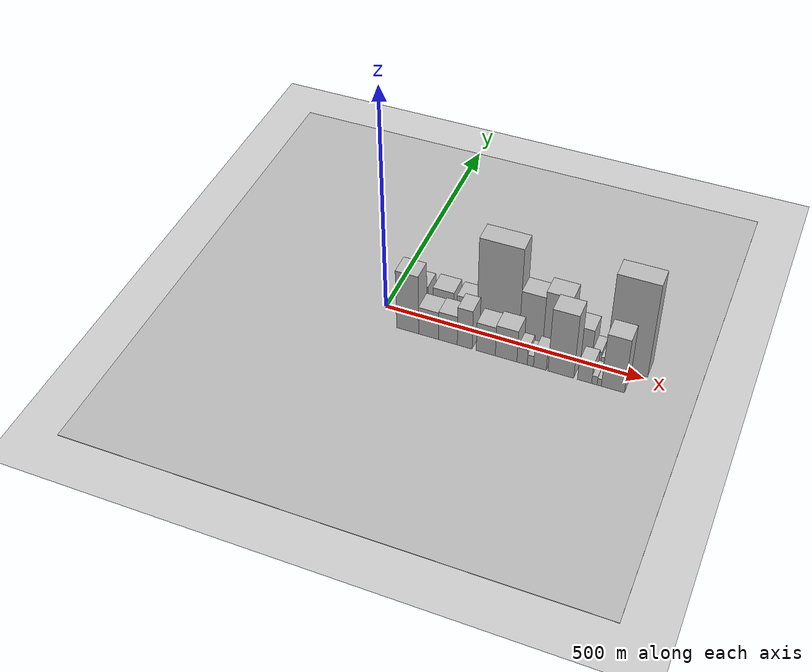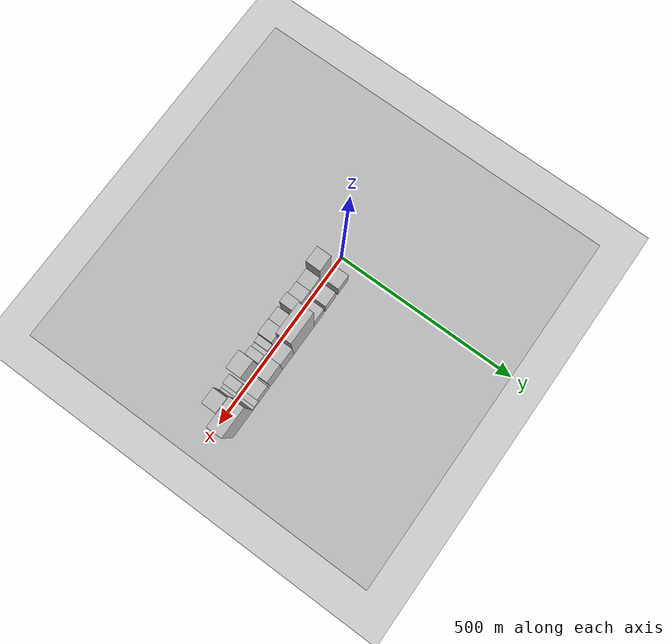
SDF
<?xml version="1.0" encoding="utf-8"?>

<sdf version="1.6">

   <world name="default">

      <gui fullscreen="0">

         <camera name="user_camera">

            <pose>-15 0 4.57585 0 0 0</pose>

            <view_controller>orbit</view_controller>

         </camera>

      </gui>

      <scene>

         <sky>

           <clouds>

             <speed>12</speed>

           </clouds>

         </sky>

         <ambient>0.4 0.4 0.4 1</ambient>

         <background>0.7 0.7 0.7 1</background>

         <shadows>1</shadows>

      </scene>

      <gravity>0 0 -9.8066</gravity>

      <magnetic_field>6e-06 2.3e-05 -4.2e-05</magnetic_field>

      <physics default="0" name="default_physics" type="ode">

         <ode>

            <solver>

               <type>quick</type>

               <iters>10</iters>

               <sor>1.0</sor>

               <use_dynamic_moi_rescaling>0</use_dynamic_moi_rescaling>

            </solver>

            <constraints>

               <cfm>0</cfm>

               <erp>0.2</erp>

               <contact_max_correcting_vel>100</contact_max_correcting_vel>

               <contact_surface_layer>0.001</contact_surface_layer>

            </constraints>

         </ode>

         <max_step_size>0.004</max_step_size>

         <real_time_factor>1</real_time_factor>

         <real_time_update_rate>250</real_time_update_rate>

      </physics>

      <light name="sun" type="directional">

         <cast_shadows>1</cast_shadows>

         <pose>0 0 10 0 0 0</pose>

         <diffuse>0.8 0.8 0.8 1</diffuse>

         <specular>0.2 0.2 0.2 1</specular>

         <attenuation>

            <range>1000</range>

            <constant>0.9</constant>

            <linear>0.01</linear>

            <quadratic>0.001</quadratic>

         </attenuation>

         <direction>-0.5 0.1 -0.9</direction>

      </light>

      <include>

         <name>ground_plane_1</name>

         <uri>model://HANNAS_ground_plane</uri>

         <pose>0 0 0  0 0 0</pose>

      </include>

      <include>

         <name>ground_plane_2</name>

         <uri>model://HANNAS_ground_plane</uri>

         <pose>100 0 0  0 0 0</pose>

      </include>

      <model name="building_1">

         <static>1</static>

         <pose frame="">60.7511 26.0000 0 0.000000 0.000000 1.570796</pose>

         <link name="link">

            <pose frame="">0 0 36.00 0 0 0</pose>

            <collision name="collision">

               <geometry>

                  <box>

                     <size>40.0000 41.5022 72.0000</size>

                  </box>

               </geometry>

               <max_contacts>10</max_contacts>

               <surface>

                  <contact>

                     <ode/>

                  </contact>

                  <bounce/>

                  <friction>

                     <torsional>

                        <ode/>

                     </torsional>

                     <ode/>

                  </friction>

               </surface>

            </collision>

            <visual name="visual">

               <cast_shadows>0</cast_shadows>

               <geometry>

                  <box>

                     <size>40.0000 41.5022 72.0000</size>

                  </box>

               </geometry>

               <material>

                  <script>

                     <uri>model://HANNAS_wall/materials/scripts</uri>

                     <uri>model://HANNAS_wall/materials/textures</uri>

                     <name>vrc/HANNAS_wall</name>

                  </script>

               </material>

            </visual>

            <self_collide>0</self_collide>

            <enable_wind>0</enable_wind>

            <kinematic>0</kinematic>

         </link>

      </model>

      <model name="building_2">

         <static>1</static>

         <pose frame="">112.4224 26.0000 0 0.000000 0.000000 1.570796</pose>

         <link name="link">

            <pose frame="">0 0 37.50 0 0 0</pose>

            <collision name="collision">

               <geometry>

                  <box>

                     <size>40.0000 41.8404 75.0000</size>

                  </box>

               </geometry>

               <max_contacts>10</max_contacts>

               <surface>

                  <contact>

                     <ode/>

                  </contact>

                  <bounce/>

                  <friction>

                     <torsional>

                        <ode/>

                     </torsional>

                     <ode/>

                  </friction>

               </surface>

            </collision>

            <visual name="visual">

               <cast_shadows>0</cast_shadows>

               <geometry>

                  <box>

                     <size>40.0000 41.8404 75.0000</size>

                  </box>

               </geometry>

               <material>

                  <script>

                     <uri>model://HANNAS_wall/materials/scripts</uri>

                     <uri>model://HANNAS_wall/materials/textures</uri>

                     <name>vrc/HANNAS_wall</name>

                  </script>

               </material>

            </visual>

            <self_collide>0</self_collide>

            <enable_wind>0</enable_wind>

            <kinematic>0</kinematic>

         </link>

      </model>

      <model name="building_3">

         <static>1</static>

         <pose frame="">159.2031 26.0000 0 0.000000 0.000000 1.570796</pose>

         <link name="link">

            <pose frame="">0 0 36.00 0 0 0</pose>

            <collision name="collision">

               <geometry>

                  <box>

                     <size>40.0000 39.7211 72.0000</size>

                  </box>

               </geometry>

               <max_contacts>10</max_contacts>

               <surface>

                  <contact>

                     <ode/>

                  </contact>

                  <bounce/>

                  <friction>

                     <torsional>

                        <ode/>

                     </torsional>

                     <ode/>

                  </friction>

               </surface>

            </collision>

            <visual name="visual">

               <cast_shadows>0</cast_shadows>

               <geometry>

                  <box>

                     <size>40.0000 39.7211 72.0000</size>

                  </box>

               </geometry>

               <material>

                  <script>

                     <uri>model://HANNAS_wall/materials/scripts</uri>

                     <uri>model://HANNAS_wall/materials/textures</uri>

                     <name>vrc/HANNAS_wall</name>

                  </script>

               </material>

            </visual>

            <self_collide>0</self_collide>

            <enable_wind>0</enable_wind>

            <kinematic>0</kinematic>

         </link>

      </model>

      <model name="building_4">

         <static>1</static>

         <pose frame="">220.4711 26.0000 0 0.000000 0.000000 1.570796</pose>

         <link name="link">

            <pose frame="">0 0 112.50 0 0 0</pose>

            <collision name="collision">

               <geometry>

                  <box>

                     <size>40.0000 82.8148 225.0000</size>

                  </box>

               </geometry>

               <max_contacts>10</max_contacts>

               <surface>

                  <contact>

                     <ode/>

                  </contact>

                  <bounce/>

                  <friction>

                     <torsional>

                        <ode/>

                     </torsional>

                     <ode/>

                  </friction>

               </surface>

            </collision>

            <visual name="visual">

               <cast_shadows>0</cast_shadows>

               <geometry>

                  <box>

                     <size>40.0000 82.8148 225.0000</size>

                  </box>

               </geometry>

               <material>

                  <script>

                     <uri>model://HANNAS_wall/materials/scripts</uri>

                     <uri>model://HANNAS_wall/materials/textures</uri>

                     <name>vrc/HANNAS_wall</name>

                  </script>

               </material>

            </visual>

            <self_collide>0</self_collide>

            <enable_wind>0</enable_wind>

            <kinematic>0</kinematic>

         </link>

      </model>

      <model name="building_5">

         <static>1</static>

         <pose frame="">284.6970 26.0000 0 0.000000 0.000000 1.570796</pose>

         <link name="link">

            <pose frame="">0 0 63.00 0 0 0</pose>

            <collision name="collision">

               <geometry>

                  <box>

                     <size>40.0000 45.6370 126.0000</size>

                  </box>

               </geometry>

               <max_contacts>10</max_contacts>

               <surface>

                  <contact>

                     <ode/>

                  </contact>

                  <bounce/>

                  <friction>

                     <torsional>

                        <ode/>

                     </torsional>

                     <ode/>

                  </friction>

               </surface>

            </collision>

            <visual name="visual">

               <cast_shadows>0</cast_shadows>

               <geometry>

                  <box>

                     <size>40.0000 45.6370 126.0000</size>

                  </box>

               </geometry>

               <material>

                  <script>

                     <uri>model://HANNAS_wall/materials/scripts</uri>

                     <uri>model://HANNAS_wall/materials/textures</uri>

                     <name>vrc/HANNAS_wall</name>

                  </script>

               </material>

            </visual>

            <self_collide>0</self_collide>

            <enable_wind>0</enable_wind>

            <kinematic>0</kinematic>

         </link>

      </model>

      <model name="building_6">

         <static>1</static>

         <pose frame="">332.1319 26.0000 0 0.000000 0.000000 1.570796</pose>

         <link name="link">

            <pose frame="">0 0 70.50 0 0 0</pose>

            <collision name="collision">

               <geometry>

                  <box>

                     <size>40.0000 49.2328 141.0000</size>

                  </box>

               </geometry>

               <max_contacts>10</max_contacts>

               <surface>

                  <contact>

                     <ode/>

                  </contact>

                  <bounce/>

                  <friction>

                     <torsional>

                        <ode/>

                     </torsional>

                     <ode/>

                  </friction>

               </surface>

            </collision>

            <visual name="visual">

               <cast_shadows>0</cast_shadows>

               <geometry>

                  <box>

                     <size>40.0000 49.2328 141.0000</size>

                  </box>

               </geometry>

               <material>

                  <script>

                     <uri>model://HANNAS_wall/materials/scripts</uri>

                     <uri>model://HANNAS_wall/materials/textures</uri>

                     <name>vrc/HANNAS_wall</name>

                  </script>

               </material>

            </visual>

            <self_collide>0</self_collide>

            <enable_wind>0</enable_wind>

            <kinematic>0</kinematic>

         </link>

      </model>

      <model name="building_7">

         <static>1</static>

         <pose frame="">380.7495 26.0000 0 0.000000 0.000000 1.570796</pose>

         <link name="link">

            <pose frame="">0 0 39.00 0 0 0</pose>

            <collision name="collision">

               <geometry>

                  <box>

                     <size>40.0000 40.0025 78.0000</size>

                  </box>

               </geometry>

               <max_contacts>10</max_contacts>

               <surface>

                  <contact>

                     <ode/>

                  </contact>

                  <bounce/>

                  <friction>

                     <torsional>

                        <ode/>

                     </torsional>

                     <ode/>

                  </friction>

               </surface>

            </collision>

            <visual name="visual">

               <cast_shadows>0</cast_shadows>

               <geometry>

                  <box>

                     <size>40.0000 40.0025 78.0000</size>

                  </box>

               </geometry>

               <material>

                  <script>

                     <uri>model://HANNAS_wall/materials/scripts</uri>

                     <uri>model://HANNAS_wall/materials/textures</uri>

                     <name>vrc/HANNAS_wall</name>

                  </script>

               </material>

            </visual>

            <self_collide>0</self_collide>

            <enable_wind>0</enable_wind>

            <kinematic>0</kinematic>

         </link>

      </model>

      <model name="building_8">

         <static>1</static>

         <pose frame="">409.3524 26.0000 0 0.000000 0.000000 1.570796</pose>

         <link name="link">

            <pose frame="">0 0 15.00 0 0 0</pose>

            <collision name="collision">

               <geometry>

                  <box>

                     <size>40.0000 17.2033 30.0000</size>

                  </box>

               </geometry>

               <max_contacts>10</max_contacts>

               <surface>

                  <contact>

                     <ode/>

                  </contact>

                  <bounce/>

                  <friction>

                     <torsional>

                        <ode/>

                     </torsional>

                     <ode/>

                  </friction>

               </surface>

            </collision>

            <visual name="visual">

               <cast_shadows>0</cast_shadows>

               <geometry>

                  <box>

                     <size>40.0000 17.2033 30.0000</size>

                  </box>

               </geometry>

               <material>

                  <script>

                     <uri>model://HANNAS_wall/materials/scripts</uri>

                     <uri>model://HANNAS_wall/materials/textures</uri>

                     <name>vrc/HANNAS_wall</name>

                  </script>

               </material>

            </visual>

            <self_collide>0</self_collide>

            <enable_wind>0</enable_wind>

            <kinematic>0</kinematic>

         </link>

      </model>

      <model name="building_9">

         <static>1</static>

         <pose frame="">422.2526 26.0000 0 0.000000 0.000000 1.570796</pose>

         <link name="link">

            <pose frame="">0 0 9.00 0 0 0</pose>

            <collision name="collision">

               <geometry>

                  <box>

                     <size>40.0000 8.5971 18.0000</size>

                  </box>

               </geometry>

               <max_contacts>10</max_contacts>

               <surface>

                  <contact>

                     <ode/>

                  </contact>

                  <bounce/>

                  <friction>

                     <torsional>

                        <ode/>

                     </torsional>

                     <ode/>

                  </friction>

               </surface>

            </collision>

            <visual name="visual">

               <cast_shadows>0</cast_shadows>

               <geometry>

                  <box>

                     <size>40.0000 8.5971 18.0000</size>

                  </box>

               </geometry>

               <material>

                  <script>

                     <uri>model://HANNAS_wall/materials/scripts</uri>

                     <uri>model://HANNAS_wall/materials/textures</uri>

                     <name>vrc/HANNAS_wall</name>

                  </script>

               </material>

            </visual>

            <self_collide>0</self_collide>

            <enable_wind>0</enable_wind>

            <kinematic>0</kinematic>

         </link>

      </model>

      <model name="building_10">

         <static>1</static>

         <pose frame="">465.9056 26.0000 0 0.000000 0.000000 1.570796</pose>

         <link name="link">

            <pose frame="">0 0 112.50 0 0 0</pose>

            <collision name="collision">

               <geometry>

                  <box>

                     <size>40.0000 78.7091 225.0000</size>

                  </box>

               </geometry>

               <max_contacts>10</max_contacts>

               <surface>

                  <contact>

                     <ode/>

                  </contact>

                  <bounce/>

                  <friction>

                     <torsional>

                        <ode/>

                     </torsional>

                     <ode/>

                  </friction>

               </surface>

            </collision>

            <visual name="visual">

               <cast_shadows>0</cast_shadows>

               <geometry>

                  <box>

                     <size>40.0000 78.7091 225.0000</size>

                  </box>

               </geometry>

               <material>

                  <script>

                     <uri>model://HANNAS_wall/materials/scripts</uri>

                     <uri>model://HANNAS_wall/materials/textures</uri>

                     <name>vrc/HANNAS_wall</name>

                  </script>

               </material>

            </visual>

            <self_collide>0</self_collide>

            <enable_wind>0</enable_wind>

            <kinematic>0</kinematic>

         </link>

      </model>

      <model name="building_11">

         <static>1</static>

         <pose frame="">62.0202 -26.0000 0 0.000000 0.000000 1.570796</pose>

         <link name="link">

            <pose frame="">0 0 72.00 0 0 0</pose>

            <collision name="collision">

               <geometry>

                  <box>

                     <size>40.0000 44.0403 144.0000</size>

                  </box>

               </geometry>

               <max_contacts>10</max_contacts>

               <surface>

                  <contact>

                     <ode/>

                  </contact>

                  <bounce/>

                  <friction>

                     <torsional>

                        <ode/>

                     </torsional>

                     <ode/>

                  </friction>

               </surface>

            </collision>

            <visual name="visual">

               <cast_shadows>0</cast_shadows>

               <geometry>

                  <box>

                     <size>40.0000 44.0403 144.0000</size>

                  </box>

               </geometry>

               <material>

                  <script>

                     <uri>model://HANNAS_wall/materials/scripts</uri>

                     <uri>model://HANNAS_wall/materials/textures</uri>

                     <name>vrc/HANNAS_wall</name>

                  </script>

               </material>

            </visual>

            <self_collide>0</self_collide>

            <enable_wind>0</enable_wind>

            <kinematic>0</kinematic>

         </link>

      </model>

      <model name="building_12">

         <static>1</static>

         <pose frame="">103.9570 -26.0000 0 0.000000 0.000000 1.570796</pose>

         <link name="link">

            <pose frame="">0 0 34.50 0 0 0</pose>

            <collision name="collision">

               <geometry>

                  <box>

                     <size>40.0000 39.8334 69.0000</size>

                  </box>

               </geometry>

               <max_contacts>10</max_contacts>

               <surface>

                  <contact>

                     <ode/>

                  </contact>

                  <bounce/>

                  <friction>

                     <torsional>

                        <ode/>

                     </torsional>

                     <ode/>

                  </friction>

               </surface>

            </collision>

            <visual name="visual">

               <cast_shadows>0</cast_shadows>

               <geometry>

                  <box>

                     <size>40.0000 39.8334 69.0000</size>

                  </box>

               </geometry>

               <material>

                  <script>

                     <uri>model://HANNAS_wall/materials/scripts</uri>

                     <uri>model://HANNAS_wall/materials/textures</uri>

                     <name>vrc/HANNAS_wall</name>

                  </script>

               </material>

            </visual>

            <self_collide>0</self_collide>

            <enable_wind>0</enable_wind>

            <kinematic>0</kinematic>

         </link>

      </model>

      <model name="building_13">

         <static>1</static>

         <pose frame="">142.1082 -26.0000 0 0.000000 0.000000 1.570796</pose>

         <link name="link">

            <pose frame="">0 0 36.00 0 0 0</pose>

            <collision name="collision">

               <geometry>

                  <box>

                     <size>40.0000 36.4689 72.0000</size>

                  </box>

               </geometry>

               <max_contacts>10</max_contacts>

               <surface>

                  <contact>

                     <ode/>

                  </contact>

                  <bounce/>

                  <friction>

                     <torsional>

                        <ode/>

                     </torsional>

                     <ode/>

                  </friction>

               </surface>

            </collision>

            <visual name="visual">

               <cast_shadows>0</cast_shadows>

               <geometry>

                  <box>

                     <size>40.0000 36.4689 72.0000</size>

                  </box>

               </geometry>

               <material>

                  <script>

                     <uri>model://HANNAS_wall/materials/scripts</uri>

                     <uri>model://HANNAS_wall/materials/textures</uri>

                     <name>vrc/HANNAS_wall</name>

                  </script>

               </material>

            </visual>

            <self_collide>0</self_collide>

            <enable_wind>0</enable_wind>

            <kinematic>0</kinematic>

         </link>

      </model>

      <model name="building_14">

         <static>1</static>

         <pose frame="">174.8274 -26.0000 0 0.000000 0.000000 1.570796</pose>

         <link name="link">

            <pose frame="">0 0 48.00 0 0 0</pose>

            <collision name="collision">

               <geometry>

                  <box>

                     <size>40.0000 28.9694 96.0000</size>

                  </box>

               </geometry>

               <max_contacts>10</max_contacts>

               <surface>

                  <contact>

                     <ode/>

                  </contact>

                  <bounce/>

                  <friction>

                     <torsional>

                        <ode/>

                     </torsional>

                     <ode/>

                  </friction>

               </surface>

            </collision>

            <visual name="visual">

               <cast_shadows>0</cast_shadows>

               <geometry>

                  <box>

                     <size>40.0000 28.9694 96.0000</size>

                  </box>

               </geometry>

               <material>

                  <script>

                     <uri>model://HANNAS_wall/materials/scripts</uri>

                     <uri>model://HANNAS_wall/materials/textures</uri>

                     <name>vrc/HANNAS_wall</name>

                  </script>

               </material>

            </visual>

            <self_collide>0</self_collide>

            <enable_wind>0</enable_wind>

            <kinematic>0</kinematic>

         </link>

      </model>

      <model name="building_15">

         <static>1</static>

         <pose frame="">215.7594 -26.0000 0 0.000000 0.000000 1.570796</pose>

         <link name="link">

            <pose frame="">0 0 36.00 0 0 0</pose>

            <collision name="collision">

               <geometry>

                  <box>

                     <size>40.0000 36.8947 72.0000</size>

                  </box>

               </geometry>

               <max_contacts>10</max_contacts>

               <surface>

                  <contact>

                     <ode/>

                  </contact>

                  <bounce/>

                  <friction>

                     <torsional>

                        <ode/>

                     </torsional>

                     <ode/>

                  </friction>

               </surface>

            </collision>

            <visual name="visual">

               <cast_shadows>0</cast_shadows>

               <geometry>

                  <box>

                     <size>40.0000 36.8947 72.0000</size>

                  </box>

               </geometry>

               <material>

                  <script>

                     <uri>model://HANNAS_wall/materials/scripts</uri>

                     <uri>model://HANNAS_wall/materials/textures</uri>

                     <name>vrc/HANNAS_wall</name>

                  </script>

               </material>

            </visual>

            <self_collide>0</self_collide>

            <enable_wind>0</enable_wind>

            <kinematic>0</kinematic>

         </link>

      </model>

      <model name="building_16">

         <static>1</static>

         <pose frame="">255.0029 -26.0000 0 0.000000 0.000000 1.570796</pose>

         <link name="link">

            <pose frame="">0 0 39.00 0 0 0</pose>

            <collision name="collision">

               <geometry>

                  <box>

                     <size>40.0000 41.5921 78.0000</size>

                  </box>

               </geometry>

               <max_contacts>10</max_contacts>

               <surface>

                  <contact>

                     <ode/>

                  </contact>

                  <bounce/>

                  <friction>

                     <torsional>

                        <ode/>

                     </torsional>

                     <ode/>

                  </friction>

               </surface>

            </collision>

            <visual name="visual">

               <cast_shadows>0</cast_shadows>

               <geometry>

                  <box>

                     <size>40.0000 41.5921 78.0000</size>

                  </box>

               </geometry>

               <material>

                  <script>

                     <uri>model://HANNAS_wall/materials/scripts</uri>

                     <uri>model://HANNAS_wall/materials/textures</uri>

                     <name>vrc/HANNAS_wall</name>

                  </script>

               </material>

            </visual>

            <self_collide>0</self_collide>

            <enable_wind>0</enable_wind>

            <kinematic>0</kinematic>

         </link>

      </model>

      <model name="building_17">

         <static>1</static>

         <pose frame="">285.6100 -26.0000 0 0.000000 0.000000 1.570796</pose>

         <link name="link">

            <pose frame="">0 0 19.50 0 0 0</pose>

            <collision name="collision">

               <geometry>

                  <box>

                     <size>40.0000 19.6221 39.0000</size>

                  </box>

               </geometry>

               <max_contacts>10</max_contacts>

               <surface>

                  <contact>

                     <ode/>

                  </contact>

                  <bounce/>

                  <friction>

                     <torsional>

                        <ode/>

                     </torsional>

                     <ode/>

                  </friction>

               </surface>

            </collision>

            <visual name="visual">

               <cast_shadows>0</cast_shadows>

               <geometry>

                  <box>

                     <size>40.0000 19.6221 39.0000</size>

                  </box>

               </geometry>

               <material>

                  <script>

                     <uri>model://HANNAS_wall/materials/scripts</uri>

                     <uri>model://HANNAS_wall/materials/textures</uri>

                     <name>vrc/HANNAS_wall</name>

                  </script>

               </material>

            </visual>

            <self_collide>0</self_collide>

            <enable_wind>0</enable_wind>

            <kinematic>0</kinematic>

         </link>

      </model>

      <model name="building_18">

         <static>1</static>

         <pose frame="">301.4681 -26.0000 0 0.000000 0.000000 1.570796</pose>

         <link name="link">

            <pose frame="">0 0 13.50 0 0 0</pose>

            <collision name="collision">

               <geometry>

                  <box>

                     <size>40.0000 12.0942 27.0000</size>

                  </box>

               </geometry>

               <max_contacts>10</max_contacts>

               <surface>

                  <contact>

                     <ode/>

                  </contact>

                  <bounce/>

                  <friction>

                     <torsional>

                        <ode/>

                     </torsional>

                     <ode/>

                  </friction>

               </surface>

            </collision>

            <visual name="visual">

               <cast_shadows>0</cast_shadows>

               <geometry>

                  <box>

                     <size>40.0000 12.0942 27.0000</size>

                  </box>

               </geometry>

               <material>

                  <script>

                     <uri>model://HANNAS_wall/materials/scripts</uri>

                     <uri>model://HANNAS_wall/materials/textures</uri>

                     <name>vrc/HANNAS_wall</name>

                  </script>

               </material>

            </visual>

            <self_collide>0</self_collide>

            <enable_wind>0</enable_wind>

            <kinematic>0</kinematic>

         </link>

      </model>

      <model name="building_19">

         <static>1</static>

         <pose frame="">319.6669 -26.0000 0 0.000000 0.000000 1.570796</pose>

         <link name="link">

            <pose frame="">0 0 21.00 0 0 0</pose>

            <collision name="collision">

               <geometry>

                  <box>

                     <size>40.0000 24.3034 42.0000</size>

                  </box>

               </geometry>

               <max_contacts>10</max_contacts>

               <surface>

                  <contact>

                     <ode/>

                  </contact>

                  <bounce/>

                  <friction>

                     <torsional>

                        <ode/>

                     </torsional>

                     <ode/>

                  </friction>

               </surface>

            </collision>

            <visual name="visual">

               <cast_shadows>0</cast_shadows>

               <geometry>

                  <box>

                     <size>40.0000 24.3034 42.0000</size>

                  </box>

               </geometry>

               <material>

                  <script>

                     <uri>model://HANNAS_wall/materials/scripts</uri>

                     <uri>model://HANNAS_wall/materials/textures</uri>

                     <name>vrc/HANNAS_wall</name>

                  </script>

               </material>

            </visual>

            <self_collide>0</self_collide>

            <enable_wind>0</enable_wind>

            <kinematic>0</kinematic>

         </link>

      </model>

      <model name="building_20">

         <static>1</static>

         <pose frame="">359.0231 -26.0000 0 0.000000 0.000000 1.570796</pose>

         <link name="link">

            <pose frame="">0 0 78.00 0 0 0</pose>

            <collision name="collision">

               <geometry>

                  <box>

                     <size>40.0000 48.4089 156.0000</size>

                  </box>

               </geometry>

               <max_contacts>10</max_contacts>

               <surface>

                  <contact>

                     <ode/>

                  </contact>

                  <bounce/>

                  <friction>

                     <torsional>

                        <ode/>

                     </torsional>

                     <ode/>

                  </friction>

               </surface>

            </collision>

            <visual name="visual">

               <cast_shadows>0</cast_shadows>

               <geometry>

                  <box>

                     <size>40.0000 48.4089 156.0000</size>

                  </box>

               </geometry>

               <material>

                  <script>

                     <uri>model://HANNAS_wall/materials/scripts</uri>

                     <uri>model://HANNAS_wall/materials/textures</uri>

                     <name>vrc/HANNAS_wall</name>

                  </script>

               </material>

            </visual>

            <self_collide>0</self_collide>

            <enable_wind>0</enable_wind>

            <kinematic>0</kinematic>

         </link>

      </model>

      <model name="building_21">

         <static>1</static>

         <pose frame="">403.4600 -26.0000 0 0.000000 0.000000 1.570796</pose>

         <link name="link">

            <pose frame="">0 0 24.00 0 0 0</pose>

            <collision name="collision">

               <geometry>

                  <box>

                     <size>40.0000 26.4649 48.0000</size>

                  </box>

               </geometry>

               <max_contacts>10</max_contacts>

               <surface>

                  <contact>

                     <ode/>

                  </contact>

                  <bounce/>

                  <friction>

                     <torsional>

                        <ode/>

                     </torsional>

                     <ode/>

                  </friction>

               </surface>

            </collision>

            <visual name="visual">

               <cast_shadows>0</cast_shadows>

               <geometry>

                  <box>

                     <size>40.0000 26.4649 48.0000</size>

                  </box>

               </geometry>

               <material>

                  <script>

                     <uri>model://HANNAS_wall/materials/scripts</uri>

                     <uri>model://HANNAS_wall/materials/textures</uri>

                     <name>vrc/HANNAS_wall</name>

                  </script>

               </material>

            </visual>

            <self_collide>0</self_collide>

            <enable_wind>0</enable_wind>

            <kinematic>0</kinematic>

         </link>

      </model>

      <model name="building_22">

         <static>1</static>

         <pose frame="">421.7397 -26.0000 0 0.000000 0.000000 1.570796</pose>

         <link name="link">

            <pose frame="">0 0 10.50 0 0 0</pose>

            <collision name="collision">

               <geometry>

                  <box>

                     <size>40.0000 10.0945 21.0000</size>

                  </box>

               </geometry>

               <max_contacts>10</max_contacts>

               <surface>

                  <contact>

                     <ode/>

                  </contact>

                  <bounce/>

                  <friction>

                     <torsional>

                        <ode/>

                     </torsional>

                     <ode/>

                  </friction>

               </surface>

            </collision>

            <visual name="visual">

               <cast_shadows>0</cast_shadows>

               <geometry>

                  <box>

                     <size>40.0000 10.0945 21.0000</size>

                  </box>

               </geometry>

               <material>

                  <script>

                     <uri>model://HANNAS_wall/materials/scripts</uri>

                     <uri>model://HANNAS_wall/materials/textures</uri>

                     <name>vrc/HANNAS_wall</name>

                  </script>

               </material>

            </visual>

            <self_collide>0</self_collide>

            <enable_wind>0</enable_wind>

            <kinematic>0</kinematic>

         </link>

      </model>

      <model name="building_23">

         <static>1</static>

         <pose frame="">430.6485 -26.0000 0 0.000000 0.000000 1.570796</pose>

         <link name="link">

            <pose frame="">0 0 9.00 0 0 0</pose>

            <collision name="collision">

               <geometry>

                  <box>

                     <size>40.0000 7.7231 18.0000</size>

                  </box>

               </geometry>

               <max_contacts>10</max_contacts>

               <surface>

                  <contact>

                     <ode/>

                  </contact>

                  <bounce/>

                  <friction>

                     <torsional>

                        <ode/>

                     </torsional>

                     <ode/>

                  </friction>

               </surface>

            </collision>

            <visual name="visual">

               <cast_shadows>0</cast_shadows>

               <geometry>

                  <box>

                     <size>40.0000 7.7231 18.0000</size>

                  </box>

               </geometry>

               <material>

                  <script>

                     <uri>model://HANNAS_wall/materials/scripts</uri>

                     <uri>model://HANNAS_wall/materials/textures</uri>

                     <name>vrc/HANNAS_wall</name>

                  </script>

               </material>

            </visual>

            <self_collide>0</self_collide>

            <enable_wind>0</enable_wind>

            <kinematic>0</kinematic>

         </link>

      </model>

      <model name="building_24">

         <static>1</static>

         <pose frame="">455.8191 -26.0000 0 0.000000 0.000000 1.570796</pose>

         <link name="link">

            <pose frame="">0 0 66.00 0 0 0</pose>

            <collision name="collision">

               <geometry>

                  <box>

                     <size>40.0000 42.6181 132.0000</size>

                  </box>

               </geometry>

               <max_contacts>10</max_contacts>

               <surface>

                  <contact>

                     <ode/>

                  </contact>

                  <bounce/>

                  <friction>

                     <torsional>

                        <ode/>

                     </torsional>

                     <ode/>

                  </friction>

               </surface>

            </collision>

            <visual name="visual">

               <cast_shadows>0</cast_shadows>

               <geometry>

                  <box>

                     <size>40.0000 42.6181 132.0000</size>

                  </box>

               </geometry>

               <material>

                  <script>

                     <uri>model://HANNAS_wall/materials/scripts</uri>

                     <uri>model://HANNAS_wall/materials/textures</uri>

                     <name>vrc/HANNAS_wall</name>

                  </script>

               </material>

            </visual>

            <self_collide>0</self_collide>

            <enable_wind>0</enable_wind>

            <kinematic>0</kinematic>

         </link>

      </model>

   </world>

</sdf>

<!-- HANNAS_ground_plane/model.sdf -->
<sdf version="1.4">
<model name="HANNAS_ground_plane">
  <static>true</static>
    <link name="link">
      <collision name="collision">
        <geometry>
          <plane>
            <normal>0 0 1</normal>
            <size>1000 1000</size>
          </plane>
        </geometry>
        <surface>
          <friction>
            <ode>
              <mu>100</mu>
              <mu2>50</mu2>
            </ode>
          </friction>
        </surface>
      </collision>
      <visual name="visual">
        <cast_shadows>false</cast_shadows>
        <geometry>
          <plane>
            <normal>0 0 1</normal>
            <size>1000 1000</size>
          </plane>
        </geometry>
        <material>
          <script>
            <uri>model://HANNAS_ground_plane/materials/scripts/HANNAS_ground_plane.material</uri>
	    <uri>model://HANNAS_ground_plane/materials/textures</uri>
            <name>HANNASGroundPlane/Image</name>
          </script>
        </material>
      </visual>
    </link>
  </model>
</sdf>
